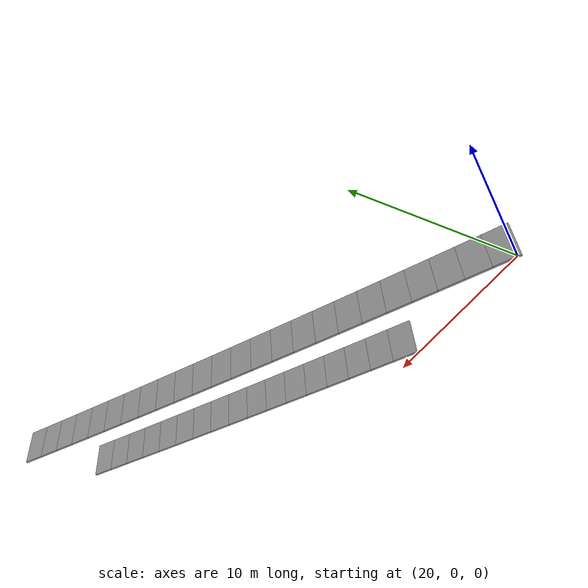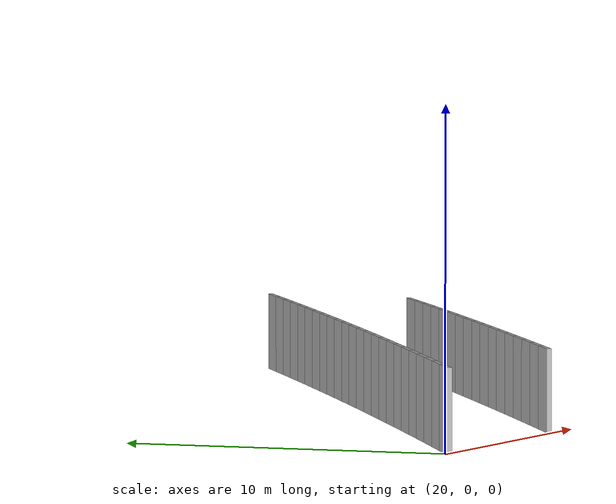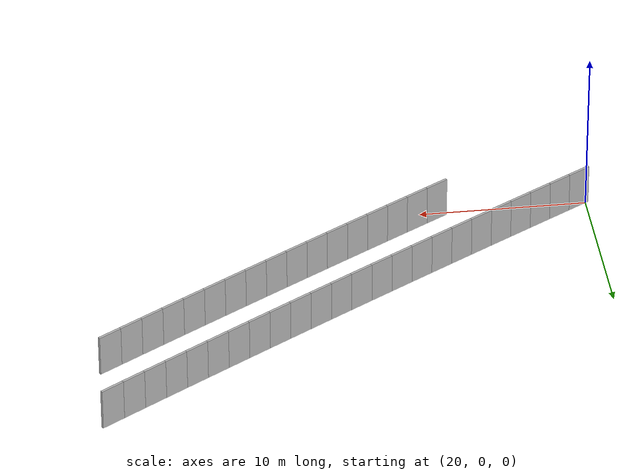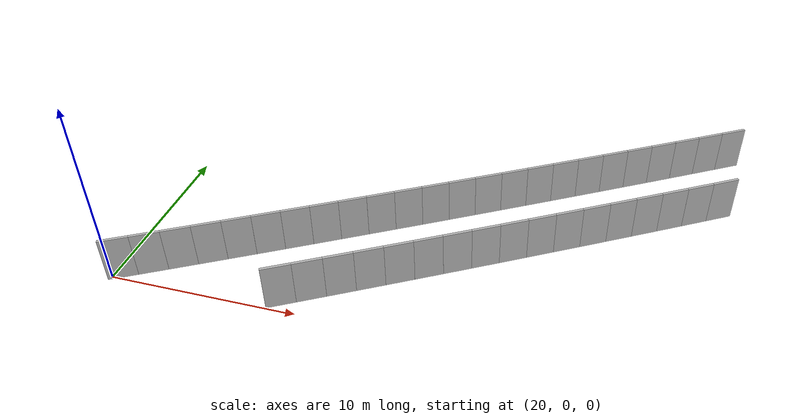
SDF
<?xml version="1.0" ?>
<sdf version="1.6">
  <model name="sps_3506">
    <pose frame="">0 0 0 0 -0 0</pose>
    <static>1</static>
    <self_collide>0</self_collide>
    <allow_auto_disable>0</allow_auto_disable>
    <link name="Wall4001">
      <kinematic>0</kinematic>
      <gravity>1</gravity>
      <self_collide>0</self_collide>
      <collision name="collision">
        <geometry>
          <box>
            <size>1.49662 0.15 2.5</size>
          </box>
        </geometry>
        <pose frame="">0 0 0 0 -0 0</pose>
      </collision>
      <visual name="visual">
        <geometry>
          <box>
            <size>1.49662 0.15 2.5</size>
          </box>
        </geometry>
        <pose frame="">0 0 0 0 -0 0</pose>
        <cast_shadows>1</cast_shadows>
        <transparency>0.0</transparency>
      </visual>
      <pose frame="">20.5067 0.202315 1.25 0 -0 0.533265</pose>
    </link>
    <link name="Wall4002">
      <kinematic>0</kinematic>
      <gravity>1</gravity>
      <self_collide>0</self_collide>
      <collision name="collision">
        <geometry>
          <box>
            <size>1.49635 0.15 2.5</size>
          </box>
        </geometry>
        <pose frame="">0 0 0 0 -0 0</pose>
      </collision>
      <visual name="visual">
        <geometry>
          <box>
            <size>1.49635 0.15 2.5</size>
          </box>
        </geometry>
        <pose frame="">0 0 0 0 -0 0</pose>
        <cast_shadows>1</cast_shadows>
        <transparency>0.0</transparency>
      </visual>
      <pose frame="">21.7948 0.964095 1.25 0 -0 0.534886</pose>
    </link>
    <link name="Wall4003">
      <kinematic>0</kinematic>
      <gravity>1</gravity>
      <self_collide>0</self_collide>
      <collision name="collision">
        <geometry>
          <box>
            <size>1.49651 0.15 2.5</size>
          </box>
        </geometry>
        <pose frame="">0 0 0 0 -0 0</pose>
      </collision>
      <visual name="visual">
        <geometry>
          <box>
            <size>1.49651 0.15 2.5</size>
          </box>
        </geometry>
        <pose frame="">0 0 0 0 -0 0</pose>
        <cast_shadows>1</cast_shadows>
        <transparency>0.0</transparency>
      </visual>
      <pose frame="">23.0815 1.72798 1.25 0 -0 0.536579</pose>
    </link>
    <link name="Wall4004">
      <kinematic>0</kinematic>
      <gravity>1</gravity>
      <self_collide>0</self_collide>
      <collision name="collision">
        <geometry>
          <box>
            <size>1.49658 0.15 2.5</size>
          </box>
        </geometry>
        <pose frame="">0 0 0 0 -0 0</pose>
      </collision>
      <visual name="visual">
        <geometry>
          <box>
            <size>1.49658 0.15 2.5</size>
          </box>
        </geometry>
        <pose frame="">0 0 0 0 -0 0</pose>
        <cast_shadows>1</cast_shadows>
        <transparency>0.0</transparency>
      </visual>
      <pose frame="">24.3672 2.49388 1.25 0 -0 0.53793</pose>
    </link>
    <link name="Wall4005">
      <kinematic>0</kinematic>
      <gravity>1</gravity>
      <self_collide>0</self_collide>
      <collision name="collision">
        <geometry>
          <box>
            <size>1.49653 0.15 2.5</size>
          </box>
        </geometry>
        <pose frame="">0 0 0 0 -0 0</pose>
      </collision>
      <visual name="visual">
        <geometry>
          <box>
            <size>1.49653 0.15 2.5</size>
          </box>
        </geometry>
        <pose frame="">0 0 0 0 -0 0</pose>
        <cast_shadows>1</cast_shadows>
        <transparency>0.0</transparency>
      </visual>
      <pose frame="">25.6518 3.26179 1.25 0 -0 0.539706</pose>
    </link>
    <link name="Wall4006">
      <kinematic>0</kinematic>
      <gravity>1</gravity>
      <self_collide>0</self_collide>
      <collision name="collision">
        <geometry>
          <box>
            <size>1.49652 0.15 2.5</size>
          </box>
        </geometry>
        <pose frame="">0 0 0 0 -0 0</pose>
      </collision>
      <visual name="visual">
        <geometry>
          <box>
            <size>1.49652 0.15 2.5</size>
          </box>
        </geometry>
        <pose frame="">0 0 0 0 -0 0</pose>
        <cast_shadows>1</cast_shadows>
        <transparency>0.0</transparency>
      </visual>
      <pose frame="">26.9351 4.03169 1.25 0 -0 0.541042</pose>
    </link>
    <link name="Wall4007">
      <kinematic>0</kinematic>
      <gravity>1</gravity>
      <self_collide>0</self_collide>
      <collision name="collision">
        <geometry>
          <box>
            <size>1.49653 0.15 2.5</size>
          </box>
        </geometry>
        <pose frame="">0 0 0 0 -0 0</pose>
      </collision>
      <visual name="visual">
        <geometry>
          <box>
            <size>1.49653 0.15 2.5</size>
          </box>
        </geometry>
        <pose frame="">0 0 0 0 -0 0</pose>
        <cast_shadows>1</cast_shadows>
        <transparency>0.0</transparency>
      </visual>
      <pose frame="">28.2172 4.80357 1.25 0 -0 0.542798</pose>
    </link>
    <link name="Wall4008">
      <kinematic>0</kinematic>
      <gravity>1</gravity>
      <self_collide>0</self_collide>
      <collision name="collision">
        <geometry>
          <box>
            <size>1.49653 0.15 2.5</size>
          </box>
        </geometry>
        <pose frame="">0 0 0 0 -0 0</pose>
      </collision>
      <visual name="visual">
        <geometry>
          <box>
            <size>1.49653 0.15 2.5</size>
          </box>
        </geometry>
        <pose frame="">0 0 0 0 -0 0</pose>
        <cast_shadows>1</cast_shadows>
        <transparency>0.0</transparency>
      </visual>
      <pose frame="">29.498 5.57759 1.25 0 -0 0.544371</pose>
    </link>
    <link name="Wall4009">
      <kinematic>0</kinematic>
      <gravity>1</gravity>
      <self_collide>0</self_collide>
      <collision name="collision">
        <geometry>
          <box>
            <size>1.4965 0.15 2.5</size>
          </box>
        </geometry>
        <pose frame="">0 0 0 0 -0 0</pose>
      </collision>
      <visual name="visual">
        <geometry>
          <box>
            <size>1.4965 0.15 2.5</size>
          </box>
        </geometry>
        <pose frame="">0 0 0 0 -0 0</pose>
        <cast_shadows>1</cast_shadows>
        <transparency>0.0</transparency>
      </visual>
      <pose frame="">30.7776 6.35359 1.25 0 -0 0.54591</pose>
    </link>
    <link name="Wall4010">
      <kinematic>0</kinematic>
      <gravity>1</gravity>
      <self_collide>0</self_collide>
      <collision name="collision">
        <geometry>
          <box>
            <size>1.49663 0.15 2.5</size>
          </box>
        </geometry>
        <pose frame="">0 0 0 0 -0 0</pose>
      </collision>
      <visual name="visual">
        <geometry>
          <box>
            <size>1.49663 0.15 2.5</size>
          </box>
        </geometry>
        <pose frame="">0 0 0 0 -0 0</pose>
        <cast_shadows>1</cast_shadows>
        <transparency>0.0</transparency>
      </visual>
      <pose frame="">32.056 7.1317 1.25 0 -0 0.547623</pose>
    </link>
    <link name="Wall4011">
      <kinematic>0</kinematic>
      <gravity>1</gravity>
      <self_collide>0</self_collide>
      <collision name="collision">
        <geometry>
          <box>
            <size>1.49641 0.15 2.5</size>
          </box>
        </geometry>
        <pose frame="">0 0 0 0 -0 0</pose>
      </collision>
      <visual name="visual">
        <geometry>
          <box>
            <size>1.49641 0.15 2.5</size>
          </box>
        </geometry>
        <pose frame="">0 0 0 0 -0 0</pose>
        <cast_shadows>1</cast_shadows>
        <transparency>0.0</transparency>
      </visual>
      <pose frame="">33.3331 7.91182 1.25 0 -0 0.5491</pose>
    </link>
    <link name="Wall4012">
      <kinematic>0</kinematic>
      <gravity>1</gravity>
      <self_collide>0</self_collide>
      <collision name="collision">
        <geometry>
          <box>
            <size>1.49639 0.15 2.5</size>
          </box>
        </geometry>
        <pose frame="">0 0 0 0 -0 0</pose>
      </collision>
      <visual name="visual">
        <geometry>
          <box>
            <size>1.49639 0.15 2.5</size>
          </box>
        </geometry>
        <pose frame="">0 0 0 0 -0 0</pose>
        <cast_shadows>1</cast_shadows>
        <transparency>0.0</transparency>
      </visual>
      <pose frame="">34.6089 8.6938 1.25 0 -0 0.55064</pose>
    </link>
    <link name="Wall4013">
      <kinematic>0</kinematic>
      <gravity>1</gravity>
      <self_collide>0</self_collide>
      <collision name="collision">
        <geometry>
          <box>
            <size>1.49669 0.15 2.5</size>
          </box>
        </geometry>
        <pose frame="">0 0 0 0 -0 0</pose>
      </collision>
      <visual name="visual">
        <geometry>
          <box>
            <size>1.49669 0.15 2.5</size>
          </box>
        </geometry>
        <pose frame="">0 0 0 0 -0 0</pose>
        <cast_shadows>1</cast_shadows>
        <transparency>0.0</transparency>
      </visual>
      <pose frame="">35.8836 9.47789 1.25 0 -0 0.552288</pose>
    </link>
    <link name="Wall4014">
      <kinematic>0</kinematic>
      <gravity>1</gravity>
      <self_collide>0</self_collide>
      <collision name="collision">
        <geometry>
          <box>
            <size>1.49636 0.15 2.5</size>
          </box>
        </geometry>
        <pose frame="">0 0 0 0 -0 0</pose>
      </collision>
      <visual name="visual">
        <geometry>
          <box>
            <size>1.49636 0.15 2.5</size>
          </box>
        </geometry>
        <pose frame="">0 0 0 0 -0 0</pose>
        <cast_shadows>1</cast_shadows>
        <transparency>0.0</transparency>
      </visual>
      <pose frame="">37.1569 10.2641 1.25 0 -0 0.553956</pose>
    </link>
    <link name="Wall4015">
      <kinematic>0</kinematic>
      <gravity>1</gravity>
      <self_collide>0</self_collide>
      <collision name="collision">
        <geometry>
          <box>
            <size>1.4965 0.15 2.5</size>
          </box>
        </geometry>
        <pose frame="">0 0 0 0 -0 0</pose>
      </collision>
      <visual name="visual">
        <geometry>
          <box>
            <size>1.4965 0.15 2.5</size>
          </box>
        </geometry>
        <pose frame="">0 0 0 0 -0 0</pose>
        <cast_shadows>1</cast_shadows>
        <transparency>0.0</transparency>
      </visual>
      <pose frame="">38.429 11.0522 1.25 0 -0 0.55534</pose>
    </link>
    <link name="Wall4016">
      <kinematic>0</kinematic>
      <gravity>1</gravity>
      <self_collide>0</self_collide>
      <collision name="collision">
        <geometry>
          <box>
            <size>1.49662 0.15 2.5</size>
          </box>
        </geometry>
        <pose frame="">0 0 0 0 -0 0</pose>
      </collision>
      <visual name="visual">
        <geometry>
          <box>
            <size>1.49662 0.15 2.5</size>
          </box>
        </geometry>
        <pose frame="">0 0 0 0 -0 0</pose>
        <cast_shadows>1</cast_shadows>
        <transparency>0.0</transparency>
      </visual>
      <pose frame="">39.7 11.8423 1.25 0 -0 0.557017</pose>
    </link>
    <link name="Wall4017">
      <kinematic>0</kinematic>
      <gravity>1</gravity>
      <self_collide>0</self_collide>
      <collision name="collision">
        <geometry>
          <box>
            <size>1.49655 0.15 2.5</size>
          </box>
        </geometry>
        <pose frame="">0 0 0 0 -0 0</pose>
      </collision>
      <visual name="visual">
        <geometry>
          <box>
            <size>1.49655 0.15 2.5</size>
          </box>
        </geometry>
        <pose frame="">0 0 0 0 -0 0</pose>
        <cast_shadows>1</cast_shadows>
        <transparency>0.0</transparency>
      </visual>
      <pose frame="">40.9697 12.6345 1.25 0 -0 0.558634</pose>
    </link>
    <link name="Wall4018">
      <kinematic>0</kinematic>
      <gravity>1</gravity>
      <self_collide>0</self_collide>
      <collision name="collision">
        <geometry>
          <box>
            <size>1.49663 0.15 2.5</size>
          </box>
        </geometry>
        <pose frame="">0 0 0 0 -0 0</pose>
      </collision>
      <visual name="visual">
        <geometry>
          <box>
            <size>1.49663 0.15 2.5</size>
          </box>
        </geometry>
        <pose frame="">0 0 0 0 -0 0</pose>
        <cast_shadows>1</cast_shadows>
        <transparency>0.0</transparency>
      </visual>
      <pose frame="">42.2382 13.4288 1.25 0 -0 0.560333</pose>
    </link>
    <link name="Wall4019">
      <kinematic>0</kinematic>
      <gravity>1</gravity>
      <self_collide>0</self_collide>
      <collision name="collision">
        <geometry>
          <box>
            <size>1.49659 0.15 2.5</size>
          </box>
        </geometry>
        <pose frame="">0 0 0 0 -0 0</pose>
      </collision>
      <visual name="visual">
        <geometry>
          <box>
            <size>1.49659 0.15 2.5</size>
          </box>
        </geometry>
        <pose frame="">0 0 0 0 -0 0</pose>
        <cast_shadows>1</cast_shadows>
        <transparency>0.0</transparency>
      </visual>
      <pose frame="">43.5053 14.2251 1.25 0 -0 0.561746</pose>
    </link>
    <link name="Wall4020">
      <kinematic>0</kinematic>
      <gravity>1</gravity>
      <self_collide>0</self_collide>
      <collision name="collision">
        <geometry>
          <box>
            <size>1.49647 0.15 2.5</size>
          </box>
        </geometry>
        <pose frame="">0 0 0 0 -0 0</pose>
      </collision>
      <visual name="visual">
        <geometry>
          <box>
            <size>1.49647 0.15 2.5</size>
          </box>
        </geometry>
        <pose frame="">0 0 0 0 -0 0</pose>
        <cast_shadows>1</cast_shadows>
        <transparency>0.0</transparency>
      </visual>
      <pose frame="">44.7712 15.0233 1.25 0 -0 0.563385</pose>
    </link>
    <link name="Wall4021">
      <kinematic>0</kinematic>
      <gravity>1</gravity>
      <self_collide>0</self_collide>
      <collision name="collision">
        <geometry>
          <box>
            <size>1.49657 0.15 2.5</size>
          </box>
        </geometry>
        <pose frame="">0 0 0 0 -0 0</pose>
      </collision>
      <visual name="visual">
        <geometry>
          <box>
            <size>1.49657 0.15 2.5</size>
          </box>
        </geometry>
        <pose frame="">0 0 0 0 -0 0</pose>
        <cast_shadows>1</cast_shadows>
        <transparency>0.0</transparency>
      </visual>
      <pose frame="">46.0358 15.8235 1.25 0 -0 0.564937</pose>
    </link>
    <link name="Wall4022">
      <kinematic>0</kinematic>
      <gravity>1</gravity>
      <self_collide>0</self_collide>
      <collision name="collision">
        <geometry>
          <box>
            <size>1.49662 0.15 2.5</size>
          </box>
        </geometry>
        <pose frame="">0 0 0 0 -0 0</pose>
      </collision>
      <visual name="visual">
        <geometry>
          <box>
            <size>1.49662 0.15 2.5</size>
          </box>
        </geometry>
        <pose frame="">0 0 0 0 -0 0</pose>
        <cast_shadows>1</cast_shadows>
        <transparency>0.0</transparency>
      </visual>
      <pose frame="">47.2993 16.6257 1.25 0 -0 0.56651</pose>
    </link>
    <link name="Wall4023">
      <kinematic>0</kinematic>
      <gravity>1</gravity>
      <self_collide>0</self_collide>
      <collision name="collision">
        <geometry>
          <box>
            <size>1.49644 0.15 2.5</size>
          </box>
        </geometry>
        <pose frame="">0 0 0 0 -0 0</pose>
      </collision>
      <visual name="visual">
        <geometry>
          <box>
            <size>1.49644 0.15 2.5</size>
          </box>
        </geometry>
        <pose frame="">0 0 0 0 -0 0</pose>
        <cast_shadows>1</cast_shadows>
        <transparency>0.0</transparency>
      </visual>
      <pose frame="">48.5614 17.4299 1.25 0 -0 0.568137</pose>
    </link>
    <link name="Wall4024">
      <kinematic>0</kinematic>
      <gravity>1</gravity>
      <self_collide>0</self_collide>
      <collision name="collision">
        <geometry>
          <box>
            <size>1.49629 0.15 2.5</size>
          </box>
        </geometry>
        <pose frame="">0 0 0 0 -0 0</pose>
      </collision>
      <visual name="visual">
        <geometry>
          <box>
            <size>1.49629 0.15 2.5</size>
          </box>
        </geometry>
        <pose frame="">0 0 0 0 -0 0</pose>
        <cast_shadows>1</cast_shadows>
        <transparency>0.0</transparency>
      </visual>
      <pose frame="">49.822 18.236 1.25 0 -0 0.569651</pose>
    </link>
    <link name="Wall7781">
      <kinematic>0</kinematic>
      <gravity>1</gravity>
      <self_collide>0</self_collide>
      <collision name="collision">
        <geometry>
          <box>
            <size>1.50322 0.15 2.5</size>
          </box>
        </geometry>
        <pose frame="">0 0 0 0 -0 0</pose>
      </collision>
      <visual name="visual">
        <geometry>
          <box>
            <size>1.50322 0.15 2.5</size>
          </box>
        </geometry>
        <pose frame="">0 0 0 0 -0 0</pose>
        <cast_shadows>1</cast_shadows>
        <transparency>0.0</transparency>
      </visual>
      <pose frame="">29.0696 0.483901 1.25 0 -0 0.541206</pose>
    </link>
    <link name="Wall7782">
      <kinematic>0</kinematic>
      <gravity>1</gravity>
      <self_collide>0</self_collide>
      <collision name="collision">
        <geometry>
          <box>
            <size>1.50287 0.15 2.5</size>
          </box>
        </geometry>
        <pose frame="">0 0 0 0 -0 0</pose>
      </collision>
      <visual name="visual">
        <geometry>
          <box>
            <size>1.50287 0.15 2.5</size>
          </box>
        </geometry>
        <pose frame="">0 0 0 0 -0 0</pose>
        <cast_shadows>1</cast_shadows>
        <transparency>0.0</transparency>
      </visual>
      <pose frame="">30.3572 1.25929 1.25 0 -0 0.542864</pose>
    </link>
    <link name="Wall7783">
      <kinematic>0</kinematic>
      <gravity>1</gravity>
      <self_collide>0</self_collide>
      <collision name="collision">
        <geometry>
          <box>
            <size>1.50314 0.15 2.5</size>
          </box>
        </geometry>
        <pose frame="">0 0 0 0 -0 0</pose>
      </collision>
      <visual name="visual">
        <geometry>
          <box>
            <size>1.50314 0.15 2.5</size>
          </box>
        </geometry>
        <pose frame="">0 0 0 0 -0 0</pose>
        <cast_shadows>1</cast_shadows>
        <transparency>0.0</transparency>
      </visual>
      <pose frame="">31.6436 2.03657 1.25 0 -0 0.54418</pose>
    </link>
    <link name="Wall7784">
      <kinematic>0</kinematic>
      <gravity>1</gravity>
      <self_collide>0</self_collide>
      <collision name="collision">
        <geometry>
          <box>
            <size>1.50307 0.15 2.5</size>
          </box>
        </geometry>
        <pose frame="">0 0 0 0 -0 0</pose>
      </collision>
      <visual name="visual">
        <geometry>
          <box>
            <size>1.50307 0.15 2.5</size>
          </box>
        </geometry>
        <pose frame="">0 0 0 0 -0 0</pose>
        <cast_shadows>1</cast_shadows>
        <transparency>0.0</transparency>
      </visual>
      <pose frame="">32.9289 2.81587 1.25 0 -0 0.545914</pose>
    </link>
    <link name="Wall7785">
      <kinematic>0</kinematic>
      <gravity>1</gravity>
      <self_collide>0</self_collide>
      <collision name="collision">
        <geometry>
          <box>
            <size>1.50292 0.15 2.5</size>
          </box>
        </geometry>
        <pose frame="">0 0 0 0 -0 0</pose>
      </collision>
      <visual name="visual">
        <geometry>
          <box>
            <size>1.50292 0.15 2.5</size>
          </box>
        </geometry>
        <pose frame="">0 0 0 0 -0 0</pose>
        <cast_shadows>1</cast_shadows>
        <transparency>0.0</transparency>
      </visual>
      <pose frame="">34.2129 3.59727 1.25 0 -0 0.547544</pose>
    </link>
    <link name="Wall7786">
      <kinematic>0</kinematic>
      <gravity>1</gravity>
      <self_collide>0</self_collide>
      <collision name="collision">
        <geometry>
          <box>
            <size>1.50323 0.15 2.5</size>
          </box>
        </geometry>
        <pose frame="">0 0 0 0 -0 0</pose>
      </collision>
      <visual name="visual">
        <geometry>
          <box>
            <size>1.50323 0.15 2.5</size>
          </box>
        </geometry>
        <pose frame="">0 0 0 0 -0 0</pose>
        <cast_shadows>1</cast_shadows>
        <transparency>0.0</transparency>
      </visual>
      <pose frame="">35.4956 4.38078 1.25 0 -0 0.549131</pose>
    </link>
    <link name="Wall7787">
      <kinematic>0</kinematic>
      <gravity>1</gravity>
      <self_collide>0</self_collide>
      <collision name="collision">
        <geometry>
          <box>
            <size>1.50304 0.15 2.5</size>
          </box>
        </geometry>
        <pose frame="">0 0 0 0 -0 0</pose>
      </collision>
      <visual name="visual">
        <geometry>
          <box>
            <size>1.50304 0.15 2.5</size>
          </box>
        </geometry>
        <pose frame="">0 0 0 0 -0 0</pose>
        <cast_shadows>1</cast_shadows>
        <transparency>0.0</transparency>
      </visual>
      <pose frame="">36.7771 5.1664 1.25 0 -0 0.550782</pose>
    </link>
    <link name="Wall7788">
      <kinematic>0</kinematic>
      <gravity>1</gravity>
      <self_collide>0</self_collide>
      <collision name="collision">
        <geometry>
          <box>
            <size>1.50307 0.15 2.5</size>
          </box>
        </geometry>
        <pose frame="">0 0 0 0 -0 0</pose>
      </collision>
      <visual name="visual">
        <geometry>
          <box>
            <size>1.50307 0.15 2.5</size>
          </box>
        </geometry>
        <pose frame="">0 0 0 0 -0 0</pose>
        <cast_shadows>1</cast_shadows>
        <transparency>0.0</transparency>
      </visual>
      <pose frame="">38.0572 5.95399 1.25 0 -0 0.552293</pose>
    </link>
    <link name="Wall7789">
      <kinematic>0</kinematic>
      <gravity>1</gravity>
      <self_collide>0</self_collide>
      <collision name="collision">
        <geometry>
          <box>
            <size>1.50315 0.15 2.5</size>
          </box>
        </geometry>
        <pose frame="">0 0 0 0 -0 0</pose>
      </collision>
      <visual name="visual">
        <geometry>
          <box>
            <size>1.50315 0.15 2.5</size>
          </box>
        </geometry>
        <pose frame="">0 0 0 0 -0 0</pose>
        <cast_shadows>1</cast_shadows>
        <transparency>0.0</transparency>
      </visual>
      <pose frame="">39.3363 6.74358 1.25 0 -0 0.553839</pose>
    </link>
    <link name="Wall7790">
      <kinematic>0</kinematic>
      <gravity>1</gravity>
      <self_collide>0</self_collide>
      <collision name="collision">
        <geometry>
          <box>
            <size>1.50312 0.15 2.5</size>
          </box>
        </geometry>
        <pose frame="">0 0 0 0 -0 0</pose>
      </collision>
      <visual name="visual">
        <geometry>
          <box>
            <size>1.50312 0.15 2.5</size>
          </box>
        </geometry>
        <pose frame="">0 0 0 0 -0 0</pose>
        <cast_shadows>1</cast_shadows>
        <transparency>0.0</transparency>
      </visual>
      <pose frame="">40.6141 7.53517 1.25 0 -0 0.555427</pose>
    </link>
    <link name="Wall7791">
      <kinematic>0</kinematic>
      <gravity>1</gravity>
      <self_collide>0</self_collide>
      <collision name="collision">
        <geometry>
          <box>
            <size>1.50304 0.15 2.5</size>
          </box>
        </geometry>
        <pose frame="">0 0 0 0 -0 0</pose>
      </collision>
      <visual name="visual">
        <geometry>
          <box>
            <size>1.50304 0.15 2.5</size>
          </box>
        </geometry>
        <pose frame="">0 0 0 0 -0 0</pose>
        <cast_shadows>1</cast_shadows>
        <transparency>0.0</transparency>
      </visual>
      <pose frame="">41.8906 8.32878 1.25 0 -0 0.557037</pose>
    </link>
    <link name="Wall7792">
      <kinematic>0</kinematic>
      <gravity>1</gravity>
      <self_collide>0</self_collide>
      <collision name="collision">
        <geometry>
          <box>
            <size>1.50307 0.15 2.5</size>
          </box>
        </geometry>
        <pose frame="">0 0 0 0 -0 0</pose>
      </collision>
      <visual name="visual">
        <geometry>
          <box>
            <size>1.50307 0.15 2.5</size>
          </box>
        </geometry>
        <pose frame="">0 0 0 0 -0 0</pose>
        <cast_shadows>1</cast_shadows>
        <transparency>0.0</transparency>
      </visual>
      <pose frame="">43.1658 9.1244 1.25 0 -0 0.558604</pose>
    </link>
    <link name="Wall7793">
      <kinematic>0</kinematic>
      <gravity>1</gravity>
      <self_collide>0</self_collide>
      <collision name="collision">
        <geometry>
          <box>
            <size>1.50317 0.15 2.5</size>
          </box>
        </geometry>
        <pose frame="">0 0 0 0 -0 0</pose>
      </collision>
      <visual name="visual">
        <geometry>
          <box>
            <size>1.50317 0.15 2.5</size>
          </box>
        </geometry>
        <pose frame="">0 0 0 0 -0 0</pose>
        <cast_shadows>1</cast_shadows>
        <transparency>0.0</transparency>
      </visual>
      <pose frame="">44.4398 9.9221 1.25 0 -0 0.560239</pose>
    </link>
    <link name="Wall7794">
      <kinematic>0</kinematic>
      <gravity>1</gravity>
      <self_collide>0</self_collide>
      <collision name="collision">
        <geometry>
          <box>
            <size>1.5031 0.15 2.5</size>
          </box>
        </geometry>
        <pose frame="">0 0 0 0 -0 0</pose>
      </collision>
      <visual name="visual">
        <geometry>
          <box>
            <size>1.5031 0.15 2.5</size>
          </box>
        </geometry>
        <pose frame="">0 0 0 0 -0 0</pose>
        <cast_shadows>1</cast_shadows>
        <transparency>0.0</transparency>
      </visual>
      <pose frame="">45.7125 10.7219 1.25 0 -0 0.561849</pose>
    </link>
    <link name="Wall7795">
      <kinematic>0</kinematic>
      <gravity>1</gravity>
      <self_collide>0</self_collide>
      <collision name="collision">
        <geometry>
          <box>
            <size>1.50305 0.15 2.5</size>
          </box>
        </geometry>
        <pose frame="">0 0 0 0 -0 0</pose>
      </collision>
      <visual name="visual">
        <geometry>
          <box>
            <size>1.50305 0.15 2.5</size>
          </box>
        </geometry>
        <pose frame="">0 0 0 0 -0 0</pose>
        <cast_shadows>1</cast_shadows>
        <transparency>0.0</transparency>
      </visual>
      <pose frame="">46.9839 11.5236 1.25 0 -0 0.563313</pose>
    </link>
    <link name="Wall7796">
      <kinematic>0</kinematic>
      <gravity>1</gravity>
      <self_collide>0</self_collide>
      <collision name="collision">
        <geometry>
          <box>
            <size>1.50298 0.15 2.5</size>
          </box>
        </geometry>
        <pose frame="">0 0 0 0 -0 0</pose>
      </collision>
      <visual name="visual">
        <geometry>
          <box>
            <size>1.50298 0.15 2.5</size>
          </box>
        </geometry>
        <pose frame="">0 0 0 0 -0 0</pose>
        <cast_shadows>1</cast_shadows>
        <transparency>0.0</transparency>
      </visual>
      <pose frame="">48.254 12.3273 1.25 0 -0 0.565069</pose>
    </link>
    <link name="Wall7797">
      <kinematic>0</kinematic>
      <gravity>1</gravity>
      <self_collide>0</self_collide>
      <collision name="collision">
        <geometry>
          <box>
            <size>1.50301 0.15 2.5</size>
          </box>
        </geometry>
        <pose frame="">0 0 0 0 -0 0</pose>
      </collision>
      <visual name="visual">
        <geometry>
          <box>
            <size>1.50301 0.15 2.5</size>
          </box>
        </geometry>
        <pose frame="">0 0 0 0 -0 0</pose>
        <cast_shadows>1</cast_shadows>
        <transparency>0.0</transparency>
      </visual>
      <pose frame="">49.5228 13.133 1.25 0 -0 0.566455</pose>
    </link>
  </model>
</sdf>
